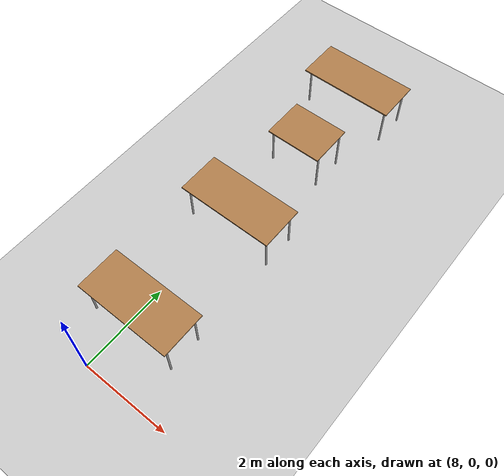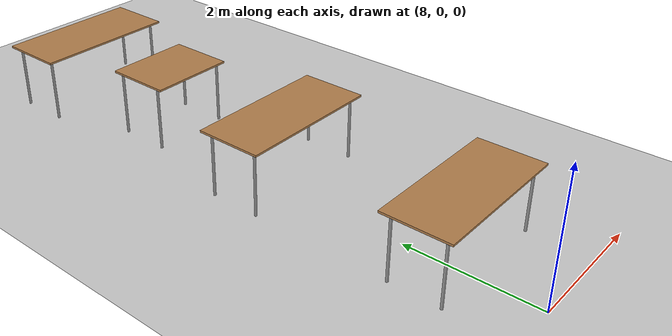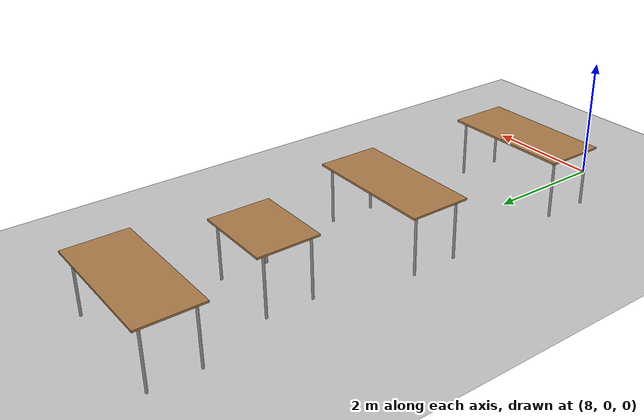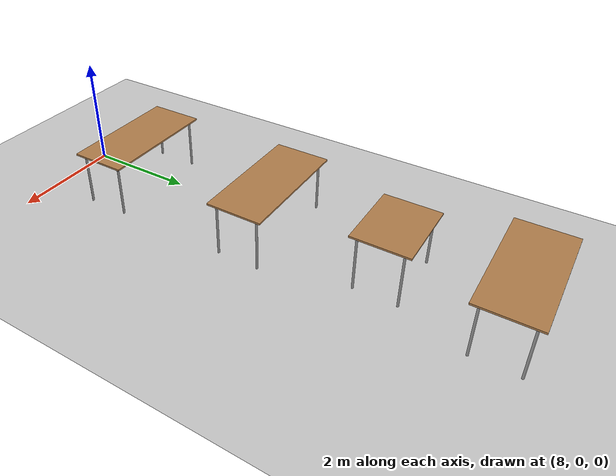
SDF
<sdf version="1.6">
 <world name="default">
  <model name="ground_plane">
   <static>1</static>
   <link name="link">
    <collision name="collision">
     <geometry><plane><normal>0 0 1</normal><size>100 100</size></plane></geometry>
     <surface>
      <contact><collide_bitmask>65535</collide_bitmask></contact>
      <friction><ode><mu>100</mu><mu2>50</mu2></ode></friction>
     </surface>
    </collision>
    <visual name="visual">
     <cast_shadows>0</cast_shadows>
     <geometry><plane><normal>0 0 1</normal><size>100 100</size></plane></geometry>
     <material>
      <script><uri>file://media/materials/scripts/gazebo.material</uri><name>Gazebo/Grey</name></script>
     </material>
    </visual>
   </link>
  </model>
  <model name="mi_og">
   <link name="link_clone_1">
    <pose>-0.024672 7.41051 0 0 -0 0</pose>
    <inertial>
     <mass>1</mass>
     <inertia><ixx>1</ixx><ixy>0</ixy><ixz>0</ixz><iyy>1</iyy><iyz>0</iyz><izz>1</izz></inertia>
    </inertial>
    <visual name="visual1">
     <pose>0 0 1 0 -0 0</pose>
     <geometry><box><size>2.2 1 0.03</size></box></geometry>
     <material>
      <script><uri>file://media/materials/scripts/gazebo.material</uri><name>Gazebo/Wood</name></script>
      <shader type="vertex"><normal_map>__default__</normal_map></shader>
      <ambient>1 1 1 1</ambient>
      <diffuse>1 1 1 1</diffuse>
      <specular>0.2 0.2 0.2 1</specular>
      <emissive>0 0 0 1</emissive>
     </material>
    </visual>
    <visual name="front_left_leg">
     <pose>1 0.38 0.5 0 -0 0</pose>
     <geometry><cylinder><radius>0.02</radius><length>1</length></cylinder></geometry>
     <material>
      <script><uri>file://media/materials/scripts/gazebo.material</uri><name>Gazebo/Grey</name></script>
      <shader type="vertex"><normal_map>__default__</normal_map></shader>
      <ambient>0.3 0.3 0.3 1</ambient>
      <diffuse>0.7 0.7 0.7 1</diffuse>
      <specular>0.01 0.01 0.01 1</specular>
      <emissive>0 0 0 1</emissive>
     </material>
    </visual>
    <visual name="front_right_leg">
     <pose>1 -0.38 0.5 0 -0 0</pose>
     <geometry><cylinder><radius>0.02</radius><length>1</length></cylinder></geometry>
     <material>
      <script><uri>file://media/materials/scripts/gazebo.material</uri><name>Gazebo/Grey</name></script>
      <shader type="vertex"><normal_map>__default__</normal_map></shader>
      <ambient>0.3 0.3 0.3 1</ambient>
      <diffuse>0.7 0.7 0.7 1</diffuse>
      <specular>0.01 0.01 0.01 1</specular>
      <emissive>0 0 0 1</emissive>
     </material>
    </visual>
    <visual name="back_right_leg">
     <pose>-1 -0.38 0.5 0 -0 0</pose>
     <geometry><cylinder><radius>0.02</radius><length>1</length></cylinder></geometry>
     <material>
      <script><uri>file://media/materials/scripts/gazebo.material</uri><name>Gazebo/Grey</name></script>
      <shader type="vertex"><normal_map>__default__</normal_map></shader>
      <ambient>0.3 0.3 0.3 1</ambient>
      <diffuse>0.7 0.7 0.7 1</diffuse>
      <specular>0.01 0.01 0.01 1</specular>
      <emissive>0 0 0 1</emissive>
     </material>
    </visual>
    <visual name="back_left_leg">
     <pose>-1 0.38 0.5 0 -0 0</pose>
     <geometry><cylinder><radius>0.02</radius><length>1</length></cylinder></geometry>
     <material>
      <script><uri>file://media/materials/scripts/gazebo.material</uri><name>Gazebo/Grey</name></script>
      <shader type="vertex"><normal_map>__default__</normal_map></shader>
      <ambient>0.3 0.3 0.3 1</ambient>
      <diffuse>0.7 0.7 0.7 1</diffuse>
      <specular>0.01 0.01 0.01 1</specular>
      <emissive>0 0 0 1</emissive>
     </material>
    </visual>
    <collision name="surface">
     <pose>0 0 1 0 -0 0</pose>
     <geometry><box><size>2.2 1 0.03</size></box></geometry>
     <surface>
      <friction>
       <ode><mu>1</mu><mu2>1</mu2><fdir1>0 0 0</fdir1><slip1>0</slip1><slip2>0</slip2></ode>
       <torsional>
        <coefficient>1</coefficient>
        <patch_radius>0</patch_radius>
        <surface_radius>0</surface_radius>
        <use_patch_radius>1</use_patch_radius>
        <ode><slip>0</slip></ode>
       </torsional>
      </friction>
      <bounce><restitution_coefficient>0</restitution_coefficient><threshold>1e+06</threshold></bounce>
      <contact>
       <collide_without_contact>0</collide_without_contact>
       <collide_without_contact_bitmask>1</collide_without_contact_bitmask>
       <collide_bitmask>1</collide_bitmask>
       <ode>
        <soft_cfm>0</soft_cfm>
        <soft_erp>0.2</soft_erp>
        <kp>1e+13</kp>
        <kd>1</kd>
        <max_vel>0.01</max_vel>
        <min_depth>0</min_depth>
       </ode>
       <bullet>
        <split_impulse>1</split_impulse>
        <split_impulse_penetration_threshold>-0.01</split_impulse_penetration_threshold>
        <soft_cfm>0</soft_cfm>
        <soft_erp>0.2</soft_erp>
        <kp>1e+13</kp>
        <kd>1</kd>
       </bullet>
      </contact>
     </surface>
    </collision>
    <collision name="front_left_leg_0">
     <pose>1 0.38 0.5 0 -0 0</pose>
     <geometry><cylinder><radius>0.02</radius><length>1</length></cylinder></geometry>
     <surface>
      <friction>
       <ode><mu>1</mu><mu2>1</mu2><fdir1>0 0 0</fdir1><slip1>0</slip1><slip2>0</slip2></ode>
       <torsional>
        <coefficient>1</coefficient>
        <patch_radius>0</patch_radius>
        <surface_radius>0</surface_radius>
        <use_patch_radius>1</use_patch_radius>
        <ode><slip>0</slip></ode>
       </torsional>
      </friction>
      <bounce><restitution_coefficient>0</restitution_coefficient><threshold>1e+06</threshold></bounce>
      <contact>
       <collide_without_contact>0</collide_without_contact>
       <collide_without_contact_bitmask>1</collide_without_contact_bitmask>
       <collide_bitmask>1</collide_bitmask>
       <ode>
        <soft_cfm>0</soft_cfm>
        <soft_erp>0.2</soft_erp>
        <kp>1e+13</kp>
        <kd>1</kd>
        <max_vel>0.01</max_vel>
        <min_depth>0</min_depth>
       </ode>
       <bullet>
        <split_impulse>1</split_impulse>
        <split_impulse_penetration_threshold>-0.01</split_impulse_penetration_threshold>
        <soft_cfm>0</soft_cfm>
        <soft_erp>0.2</soft_erp>
        <kp>1e+13</kp>
        <kd>1</kd>
       </bullet>
      </contact>
     </surface>
    </collision>
    <collision name="front_right_leg_0">
     <pose>1 -0.38 0.5 0 -0 0</pose>
     <geometry><cylinder><radius>0.02</radius><length>1</length></cylinder></geometry>
     <surface>
      <friction>
       <ode><mu>1</mu><mu2>1</mu2><fdir1>0 0 0</fdir1><slip1>0</slip1><slip2>0</slip2></ode>
       <torsional>
        <coefficient>1</coefficient>
        <patch_radius>0</patch_radius>
        <surface_radius>0</surface_radius>
        <use_patch_radius>1</use_patch_radius>
        <ode><slip>0</slip></ode>
       </torsional>
      </friction>
      <bounce><restitution_coefficient>0</restitution_coefficient><threshold>1e+06</threshold></bounce>
      <contact>
       <collide_without_contact>0</collide_without_contact>
       <collide_without_contact_bitmask>1</collide_without_contact_bitmask>
       <collide_bitmask>1</collide_bitmask>
       <ode>
        <soft_cfm>0</soft_cfm>
        <soft_erp>0.2</soft_erp>
        <kp>1e+13</kp>
        <kd>1</kd>
        <max_vel>0.01</max_vel>
        <min_depth>0</min_depth>
       </ode>
       <bullet>
        <split_impulse>1</split_impulse>
        <split_impulse_penetration_threshold>-0.01</split_impulse_penetration_threshold>
        <soft_cfm>0</soft_cfm>
        <soft_erp>0.2</soft_erp>
        <kp>1e+13</kp>
        <kd>1</kd>
       </bullet>
      </contact>
     </surface>
    </collision>
    <collision name="back_right_leg_0">
     <pose>-1 -0.38 0.5 0 -0 0</pose>
     <geometry><cylinder><radius>0.02</radius><length>1</length></cylinder></geometry>
     <surface>
      <friction>
       <ode><mu>1</mu><mu2>1</mu2><fdir1>0 0 0</fdir1><slip1>0</slip1><slip2>0</slip2></ode>
       <torsional>
        <coefficient>1</coefficient>
        <patch_radius>0</patch_radius>
        <surface_radius>0</surface_radius>
        <use_patch_radius>1</use_patch_radius>
        <ode><slip>0</slip></ode>
       </torsional>
      </friction>
      <bounce><restitution_coefficient>0</restitution_coefficient><threshold>1e+06</threshold></bounce>
      <contact>
       <collide_without_contact>0</collide_without_contact>
       <collide_without_contact_bitmask>1</collide_without_contact_bitmask>
       <collide_bitmask>1</collide_bitmask>
       <ode>
        <soft_cfm>0</soft_cfm>
        <soft_erp>0.2</soft_erp>
        <kp>1e+13</kp>
        <kd>1</kd>
        <max_vel>0.01</max_vel>
        <min_depth>0</min_depth>
       </ode>
       <bullet>
        <split_impulse>1</split_impulse>
        <split_impulse_penetration_threshold>-0.01</split_impulse_penetration_threshold>
        <soft_cfm>0</soft_cfm>
        <soft_erp>0.2</soft_erp>
        <kp>1e+13</kp>
        <kd>1</kd>
       </bullet>
      </contact>
     </surface>
    </collision>
    <collision name="back_left_leg_0">
     <pose>-1 0.38 0.5 0 -0 0</pose>
     <geometry><cylinder><radius>0.02</radius><length>1</length></cylinder></geometry>
     <surface>
      <friction>
       <ode><mu>1</mu><mu2>1</mu2><fdir1>0 0 0</fdir1><slip1>0</slip1><slip2>0</slip2></ode>
       <torsional>
        <coefficient>1</coefficient>
        <patch_radius>0</patch_radius>
        <surface_radius>0</surface_radius>
        <use_patch_radius>1</use_patch_radius>
        <ode><slip>0</slip></ode>
       </torsional>
      </friction>
      <bounce><restitution_coefficient>0</restitution_coefficient><threshold>1e+06</threshold></bounce>
      <contact>
       <collide_without_contact>0</collide_without_contact>
       <collide_without_contact_bitmask>1</collide_without_contact_bitmask>
       <collide_bitmask>1</collide_bitmask>
       <ode>
        <soft_cfm>0</soft_cfm>
        <soft_erp>0.2</soft_erp>
        <kp>1e+13</kp>
        <kd>1</kd>
        <max_vel>0.01</max_vel>
        <min_depth>0</min_depth>
       </ode>
       <bullet>
        <split_impulse>1</split_impulse>
        <split_impulse_penetration_threshold>-0.01</split_impulse_penetration_threshold>
        <soft_cfm>0</soft_cfm>
        <soft_erp>0.2</soft_erp>
        <kp>1e+13</kp>
        <kd>1</kd>
       </bullet>
      </contact>
     </surface>
    </collision>
   </link>
   <link name="link_clone_2">
    <pose>-0.032705 10.2761 0 0 -0 0</pose>
    <inertial>
     <mass>1</mass>
     <inertia><ixx>1</ixx><ixy>0</ixy><ixz>0</ixz><iyy>1</iyy><iyz>0</iyz><izz>1</izz></inertia>
    </inertial>
    <visual name="visual1">
     <pose>0 0 1 0 -0 0</pose>
     <geometry><box><size>2.2 1 0.03</size></box></geometry>
     <material>
      <script><uri>file://media/materials/scripts/gazebo.material</uri><name>Gazebo/Wood</name></script>
      <shader type="vertex"><normal_map>__default__</normal_map></shader>
      <ambient>1 1 1 1</ambient>
      <diffuse>1 1 1 1</diffuse>
      <specular>0.2 0.2 0.2 1</specular>
      <emissive>0 0 0 1</emissive>
     </material>
    </visual>
    <visual name="front_left_leg">
     <pose>1 0.38 0.5 0 -0 0</pose>
     <geometry><cylinder><radius>0.02</radius><length>1</length></cylinder></geometry>
     <material>
      <script><uri>file://media/materials/scripts/gazebo.material</uri><name>Gazebo/Grey</name></script>
      <shader type="vertex"><normal_map>__default__</normal_map></shader>
      <ambient>0.3 0.3 0.3 1</ambient>
      <diffuse>0.7 0.7 0.7 1</diffuse>
      <specular>0.01 0.01 0.01 1</specular>
      <emissive>0 0 0 1</emissive>
     </material>
    </visual>
    <visual name="front_right_leg">
     <pose>1 -0.38 0.5 0 -0 0</pose>
     <geometry><cylinder><radius>0.02</radius><length>1</length></cylinder></geometry>
     <material>
      <script><uri>file://media/materials/scripts/gazebo.material</uri><name>Gazebo/Grey</name></script>
      <shader type="vertex"><normal_map>__default__</normal_map></shader>
      <ambient>0.3 0.3 0.3 1</ambient>
      <diffuse>0.7 0.7 0.7 1</diffuse>
      <specular>0.01 0.01 0.01 1</specular>
      <emissive>0 0 0 1</emissive>
     </material>
    </visual>
    <visual name="back_right_leg">
     <pose>-1 -0.38 0.5 0 -0 0</pose>
     <geometry><cylinder><radius>0.02</radius><length>1</length></cylinder></geometry>
     <material>
      <script><uri>file://media/materials/scripts/gazebo.material</uri><name>Gazebo/Grey</name></script>
      <shader type="vertex"><normal_map>__default__</normal_map></shader>
      <ambient>0.3 0.3 0.3 1</ambient>
      <diffuse>0.7 0.7 0.7 1</diffuse>
      <specular>0.01 0.01 0.01 1</specular>
      <emissive>0 0 0 1</emissive>
     </material>
    </visual>
    <visual name="back_left_leg">
     <pose>-1 0.38 0.5 0 -0 0</pose>
     <geometry><cylinder><radius>0.02</radius><length>1</length></cylinder></geometry>
     <material>
      <script><uri>file://media/materials/scripts/gazebo.material</uri><name>Gazebo/Grey</name></script>
      <shader type="vertex"><normal_map>__default__</normal_map></shader>
      <ambient>0.3 0.3 0.3 1</ambient>
      <diffuse>0.7 0.7 0.7 1</diffuse>
      <specular>0.01 0.01 0.01 1</specular>
      <emissive>0 0 0 1</emissive>
     </material>
    </visual>
    <collision name="surface">
     <pose>0 0 1 0 -0 0</pose>
     <geometry><box><size>2.2 1 0.03</size></box></geometry>
     <surface>
      <friction>
       <ode><mu>1</mu><mu2>1</mu2><fdir1>0 0 0</fdir1><slip1>0</slip1><slip2>0</slip2></ode>
       <torsional>
        <coefficient>1</coefficient>
        <patch_radius>0</patch_radius>
        <surface_radius>0</surface_radius>
        <use_patch_radius>1</use_patch_radius>
        <ode><slip>0</slip></ode>
       </torsional>
      </friction>
      <bounce><restitution_coefficient>0</restitution_coefficient><threshold>1e+06</threshold></bounce>
      <contact>
       <collide_without_contact>0</collide_without_contact>
       <collide_without_contact_bitmask>1</collide_without_contact_bitmask>
       <collide_bitmask>1</collide_bitmask>
       <ode>
        <soft_cfm>0</soft_cfm>
        <soft_erp>0.2</soft_erp>
        <kp>1e+13</kp>
        <kd>1</kd>
        <max_vel>0.01</max_vel>
        <min_depth>0</min_depth>
       </ode>
       <bullet>
        <split_impulse>1</split_impulse>
        <split_impulse_penetration_threshold>-0.01</split_impulse_penetration_threshold>
        <soft_cfm>0</soft_cfm>
        <soft_erp>0.2</soft_erp>
        <kp>1e+13</kp>
        <kd>1</kd>
       </bullet>
      </contact>
     </surface>
    </collision>
    <collision name="front_left_leg_0">
     <pose>1 0.38 0.5 0 -0 0</pose>
     <geometry><cylinder><radius>0.02</radius><length>1</length></cylinder></geometry>
     <surface>
      <friction>
       <ode><mu>1</mu><mu2>1</mu2><fdir1>0 0 0</fdir1><slip1>0</slip1><slip2>0</slip2></ode>
       <torsional>
        <coefficient>1</coefficient>
        <patch_radius>0</patch_radius>
        <surface_radius>0</surface_radius>
        <use_patch_radius>1</use_patch_radius>
        <ode><slip>0</slip></ode>
       </torsional>
      </friction>
      <bounce><restitution_coefficient>0</restitution_coefficient><threshold>1e+06</threshold></bounce>
      <contact>
       <collide_without_contact>0</collide_without_contact>
       <collide_without_contact_bitmask>1</collide_without_contact_bitmask>
       <collide_bitmask>1</collide_bitmask>
       <ode>
        <soft_cfm>0</soft_cfm>
        <soft_erp>0.2</soft_erp>
        <kp>1e+13</kp>
        <kd>1</kd>
        <max_vel>0.01</max_vel>
        <min_depth>0</min_depth>
       </ode>
       <bullet>
        <split_impulse>1</split_impulse>
        <split_impulse_penetration_threshold>-0.01</split_impulse_penetration_threshold>
        <soft_cfm>0</soft_cfm>
        <soft_erp>0.2</soft_erp>
        <kp>1e+13</kp>
        <kd>1</kd>
       </bullet>
      </contact>
     </surface>
    </collision>
    <collision name="back_right_leg_0">
     <pose>-1 -0.38 0.5 0 -0 0</pose>
     <geometry><cylinder><radius>0.02</radius><length>1</length></cylinder></geometry>
     <surface>
      <friction>
       <ode><mu>1</mu><mu2>1</mu2><fdir1>0 0 0</fdir1><slip1>0</slip1><slip2>0</slip2></ode>
       <torsional>
        <coefficient>1</coefficient>
        <patch_radius>0</patch_radius>
        <surface_radius>0</surface_radius>
        <use_patch_radius>1</use_patch_radius>
        <ode><slip>0</slip></ode>
       </torsional>
      </friction>
      <bounce><restitution_coefficient>0</restitution_coefficient><threshold>1e+06</threshold></bounce>
      <contact>
       <collide_without_contact>0</collide_without_contact>
       <collide_without_contact_bitmask>1</collide_without_contact_bitmask>
       <collide_bitmask>1</collide_bitmask>
       <ode>
        <soft_cfm>0</soft_cfm>
        <soft_erp>0.2</soft_erp>
        <kp>1e+13</kp>
        <kd>1</kd>
        <max_vel>0.01</max_vel>
        <min_depth>0</min_depth>
       </ode>
       <bullet>
        <split_impulse>1</split_impulse>
        <split_impulse_penetration_threshold>-0.01</split_impulse_penetration_threshold>
        <soft_cfm>0</soft_cfm>
        <soft_erp>0.2</soft_erp>
        <kp>1e+13</kp>
        <kd>1</kd>
       </bullet>
      </contact>
     </surface>
    </collision>
    <collision name="front_right_leg_0">
     <pose>1 -0.38 0.5 0 -0 0</pose>
     <geometry><cylinder><radius>0.02</radius><length>1</length></cylinder></geometry>
     <surface>
      <friction>
       <ode><mu>1</mu><mu2>1</mu2><fdir1>0 0 0</fdir1><slip1>0</slip1><slip2>0</slip2></ode>
       <torsional>
        <coefficient>1</coefficient>
        <patch_radius>0</patch_radius>
        <surface_radius>0</surface_radius>
        <use_patch_radius>1</use_patch_radius>
        <ode><slip>0</slip></ode>
       </torsional>
      </friction>
      <bounce><restitution_coefficient>0</restitution_coefficient><threshold>1e+06</threshold></bounce>
      <contact>
       <collide_without_contact>0</collide_without_contact>
       <collide_without_contact_bitmask>1</collide_without_contact_bitmask>
       <collide_bitmask>1</collide_bitmask>
       <ode>
        <soft_cfm>0</soft_cfm>
        <soft_erp>0.2</soft_erp>
        <kp>1e+13</kp>
        <kd>1</kd>
        <max_vel>0.01</max_vel>
        <min_depth>0</min_depth>
       </ode>
       <bullet>
        <split_impulse>1</split_impulse>
        <split_impulse_penetration_threshold>-0.01</split_impulse_penetration_threshold>
        <soft_cfm>0</soft_cfm>
        <soft_erp>0.2</soft_erp>
        <kp>1e+13</kp>
        <kd>1</kd>
       </bullet>
      </contact>
     </surface>
    </collision>
    <collision name="back_left_leg_0">
     <pose>-1 0.38 0.5 0 -0 0</pose>
     <geometry><cylinder><radius>0.02</radius><length>1</length></cylinder></geometry>
     <surface>
      <friction>
       <ode><mu>1</mu><mu2>1</mu2><fdir1>0 0 0</fdir1><slip1>0</slip1><slip2>0</slip2></ode>
       <torsional>
        <coefficient>1</coefficient>
        <patch_radius>0</patch_radius>
        <surface_radius>0</surface_radius>
        <use_patch_radius>1</use_patch_radius>
        <ode><slip>0</slip></ode>
       </torsional>
      </friction>
      <bounce><restitution_coefficient>0</restitution_coefficient><threshold>1e+06</threshold></bounce>
      <contact>
       <collide_without_contact>0</collide_without_contact>
       <collide_without_contact_bitmask>1</collide_without_contact_bitmask>
       <collide_bitmask>1</collide_bitmask>
       <ode>
        <soft_cfm>0</soft_cfm>
        <soft_erp>0.2</soft_erp>
        <kp>1e+13</kp>
        <kd>1</kd>
        <max_vel>0.01</max_vel>
        <min_depth>0</min_depth>
       </ode>
       <bullet>
        <split_impulse>1</split_impulse>
        <split_impulse_penetration_threshold>-0.01</split_impulse_penetration_threshold>
        <soft_cfm>0</soft_cfm>
        <soft_erp>0.2</soft_erp>
        <kp>1e+13</kp>
        <kd>1</kd>
       </bullet>
      </contact>
     </surface>
    </collision>
   </link>
   <link name="link_clone_2_clone">
    <pose>-0.036589 12.5473 0 0 -0 0</pose>
    <inertial>
     <mass>1</mass>
     <inertia><ixx>1</ixx><ixy>0</ixy><ixz>0</ixz><iyy>1</iyy><iyz>0</iyz><izz>1</izz></inertia>
    </inertial>
    <visual name="visual1">
     <pose>0 0 1 0 -0 0</pose>
     <geometry><box><size>1.3 1 0.03</size></box></geometry>
     <material>
      <script><uri>file://media/materials/scripts/gazebo.material</uri><name>Gazebo/Wood</name></script>
      <shader type="vertex"><normal_map>__default__</normal_map></shader>
      <ambient>1 1 1 1</ambient>
      <diffuse>1 1 1 1</diffuse>
      <specular>0.2 0.2 0.2 1</specular>
      <emissive>0 0 0 1</emissive>
     </material>
    </visual>
    <visual name="front_right_leg">
     <pose>0.6 -0.38 0.5 0 -0 0</pose>
     <geometry><cylinder><radius>0.02</radius><length>1</length></cylinder></geometry>
     <material>
      <script><uri>file://media/materials/scripts/gazebo.material</uri><name>Gazebo/Grey</name></script>
      <shader type="vertex"><normal_map>__default__</normal_map></shader>
      <ambient>0.3 0.3 0.3 1</ambient>
      <diffuse>0.7 0.7 0.7 1</diffuse>
      <specular>0.01 0.01 0.01 1</specular>
      <emissive>0 0 0 1</emissive>
     </material>
    </visual>
    <visual name="front_left_leg">
     <pose>0.6 0.38 0.5 0 -0 0</pose>
     <geometry><cylinder><radius>0.02</radius><length>1</length></cylinder></geometry>
     <material>
      <script><uri>file://media/materials/scripts/gazebo.material</uri><name>Gazebo/Grey</name></script>
      <shader type="vertex"><normal_map>__default__</normal_map></shader>
      <ambient>0.3 0.3 0.3 1</ambient>
      <diffuse>0.7 0.7 0.7 1</diffuse>
      <specular>0.01 0.01 0.01 1</specular>
      <emissive>0 0 0 1</emissive>
     </material>
    </visual>
    <visual name="back_right_leg">
     <pose>-0.6 -0.38 0.5 0 -0 0</pose>
     <geometry><cylinder><radius>0.02</radius><length>1</length></cylinder></geometry>
     <material>
      <script><uri>file://media/materials/scripts/gazebo.material</uri><name>Gazebo/Grey</name></script>
      <shader type="vertex"><normal_map>__default__</normal_map></shader>
      <ambient>0.3 0.3 0.3 1</ambient>
      <diffuse>0.7 0.7 0.7 1</diffuse>
      <specular>0.01 0.01 0.01 1</specular>
      <emissive>0 0 0 1</emissive>
     </material>
    </visual>
    <visual name="back_left_leg">
     <pose>-0.6 0.38 0.5 0 -0 0</pose>
     <geometry><cylinder><radius>0.02</radius><length>1</length></cylinder></geometry>
     <material>
      <script><uri>file://media/materials/scripts/gazebo.material</uri><name>Gazebo/Grey</name></script>
      <shader type="vertex"><normal_map>__default__</normal_map></shader>
      <ambient>0.3 0.3 0.3 1</ambient>
      <diffuse>0.7 0.7 0.7 1</diffuse>
      <specular>0.01 0.01 0.01 1</specular>
      <emissive>0 0 0 1</emissive>
     </material>
    </visual>
    <collision name="surface">
     <pose>0 0 1 0 -0 0</pose>
     <geometry><box><size>1.4 1 0.03</size></box></geometry>
     <surface>
      <friction>
       <ode><mu>1</mu><mu2>1</mu2><fdir1>0 0 0</fdir1><slip1>0</slip1><slip2>0</slip2></ode>
       <torsional>
        <coefficient>1</coefficient>
        <patch_radius>0</patch_radius>
        <surface_radius>0</surface_radius>
        <use_patch_radius>1</use_patch_radius>
        <ode><slip>0</slip></ode>
       </torsional>
      </friction>
      <bounce><restitution_coefficient>0</restitution_coefficient><threshold>1e+06</threshold></bounce>
      <contact>
       <collide_without_contact>0</collide_without_contact>
       <collide_without_contact_bitmask>1</collide_without_contact_bitmask>
       <collide_bitmask>1</collide_bitmask>
       <ode>
        <soft_cfm>0</soft_cfm>
        <soft_erp>0.2</soft_erp>
        <kp>1e+13</kp>
        <kd>1</kd>
        <max_vel>0.01</max_vel>
        <min_depth>0</min_depth>
       </ode>
       <bullet>
        <split_impulse>1</split_impulse>
        <split_impulse_penetration_threshold>-0.01</split_impulse_penetration_threshold>
        <soft_cfm>0</soft_cfm>
        <soft_erp>0.2</soft_erp>
        <kp>1e+13</kp>
        <kd>1</kd>
       </bullet>
      </contact>
     </surface>
    </collision>
    <collision name="front_left_leg_0">
     <pose>0.6 0.38 0.5 0 -0 0</pose>
     <geometry><cylinder><radius>0.02</radius><length>1</length></cylinder></geometry>
     <surface>
      <friction>
       <ode><mu>1</mu><mu2>1</mu2><fdir1>0 0 0</fdir1><slip1>0</slip1><slip2>0</slip2></ode>
       <torsional>
        <coefficient>1</coefficient>
        <patch_radius>0</patch_radius>
        <surface_radius>0</surface_radius>
        <use_patch_radius>1</use_patch_radius>
        <ode><slip>0</slip></ode>
       </torsional>
      </friction>
      <bounce><restitution_coefficient>0</restitution_coefficient><threshold>1e+06</threshold></bounce>
      <contact>
       <collide_without_contact>0</collide_without_contact>
       <collide_without_contact_bitmask>1</collide_without_contact_bitmask>
       <collide_bitmask>1</collide_bitmask>
       <ode>
        <soft_cfm>0</soft_cfm>
        <soft_erp>0.2</soft_erp>
        <kp>1e+13</kp>
        <kd>1</kd>
        <max_vel>0.01</max_vel>
        <min_depth>0</min_depth>
       </ode>
       <bullet>
        <split_impulse>1</split_impulse>
        <split_impulse_penetration_threshold>-0.01</split_impulse_penetration_threshold>
        <soft_cfm>0</soft_cfm>
        <soft_erp>0.2</soft_erp>
        <kp>1e+13</kp>
        <kd>1</kd>
       </bullet>
      </contact>
     </surface>
    </collision>
    <collision name="back_right_leg_0">
     <pose>-0.6 -0.38 0.5 0 -0 0</pose>
     <geometry><cylinder><radius>0.02</radius><length>1</length></cylinder></geometry>
     <surface>
      <friction>
       <ode><mu>1</mu><mu2>1</mu2><fdir1>0 0 0</fdir1><slip1>0</slip1><slip2>0</slip2></ode>
       <torsional>
        <coefficient>1</coefficient>
        <patch_radius>0</patch_radius>
        <surface_radius>0</surface_radius>
        <use_patch_radius>1</use_patch_radius>
        <ode><slip>0</slip></ode>
       </torsional>
      </friction>
      <bounce><restitution_coefficient>0</restitution_coefficient><threshold>1e+06</threshold></bounce>
      <contact>
       <collide_without_contact>0</collide_without_contact>
       <collide_without_contact_bitmask>1</collide_without_contact_bitmask>
       <collide_bitmask>1</collide_bitmask>
       <ode>
        <soft_cfm>0</soft_cfm>
        <soft_erp>0.2</soft_erp>
        <kp>1e+13</kp>
        <kd>1</kd>
        <max_vel>0.01</max_vel>
        <min_depth>0</min_depth>
       </ode>
       <bullet>
        <split_impulse>1</split_impulse>
        <split_impulse_penetration_threshold>-0.01</split_impulse_penetration_threshold>
        <soft_cfm>0</soft_cfm>
        <soft_erp>0.2</soft_erp>
        <kp>1e+13</kp>
        <kd>1</kd>
       </bullet>
      </contact>
     </surface>
    </collision>
    <collision name="front_right_leg_0">
     <pose>0.6 -0.38 0.5 0 -0 0</pose>
     <geometry><cylinder><radius>0.02</radius><length>1</length></cylinder></geometry>
     <surface>
      <friction>
       <ode><mu>1</mu><mu2>1</mu2><fdir1>0 0 0</fdir1><slip1>0</slip1><slip2>0</slip2></ode>
       <torsional>
        <coefficient>1</coefficient>
        <patch_radius>0</patch_radius>
        <surface_radius>0</surface_radius>
        <use_patch_radius>1</use_patch_radius>
        <ode><slip>0</slip></ode>
       </torsional>
      </friction>
      <bounce><restitution_coefficient>0</restitution_coefficient><threshold>1e+06</threshold></bounce>
      <contact>
       <collide_without_contact>0</collide_without_contact>
       <collide_without_contact_bitmask>1</collide_without_contact_bitmask>
       <collide_bitmask>1</collide_bitmask>
       <ode>
        <soft_cfm>0</soft_cfm>
        <soft_erp>0.2</soft_erp>
        <kp>1e+13</kp>
        <kd>1</kd>
        <max_vel>0.01</max_vel>
        <min_depth>0</min_depth>
       </ode>
       <bullet>
        <split_impulse>1</split_impulse>
        <split_impulse_penetration_threshold>-0.01</split_impulse_penetration_threshold>
        <soft_cfm>0</soft_cfm>
        <soft_erp>0.2</soft_erp>
        <kp>1e+13</kp>
        <kd>1</kd>
       </bullet>
      </contact>
     </surface>
    </collision>
    <collision name="back_left_leg_0">
     <pose>-0.6 0.38 0.5 0 -0 0</pose>
     <geometry><cylinder><radius>0.02</radius><length>1</length></cylinder></geometry>
     <surface>
      <friction>
       <ode><mu>1</mu><mu2>1</mu2><fdir1>0 0 0</fdir1><slip1>0</slip1><slip2>0</slip2></ode>
       <torsional>
        <coefficient>1</coefficient>
        <patch_radius>0</patch_radius>
        <surface_radius>0</surface_radius>
        <use_patch_radius>1</use_patch_radius>
        <ode><slip>0</slip></ode>
       </torsional>
      </friction>
      <bounce><restitution_coefficient>0</restitution_coefficient><threshold>1e+06</threshold></bounce>
      <contact>
       <collide_without_contact>0</collide_without_contact>
       <collide_without_contact_bitmask>1</collide_without_contact_bitmask>
       <collide_bitmask>1</collide_bitmask>
       <ode>
        <soft_cfm>0</soft_cfm>
        <soft_erp>0.2</soft_erp>
        <kp>1e+13</kp>
        <kd>1</kd>
        <max_vel>0.01</max_vel>
        <min_depth>0</min_depth>
       </ode>
       <bullet>
        <split_impulse>1</split_impulse>
        <split_impulse_penetration_threshold>-0.01</split_impulse_penetration_threshold>
        <soft_cfm>0</soft_cfm>
        <soft_erp>0.2</soft_erp>
        <kp>1e+13</kp>
        <kd>1</kd>
       </bullet>
      </contact>
     </surface>
    </collision>
   </link>
   <link name="link_clone_3">
    <pose>-0.057419 14.4989 0 0 -0 0</pose>
    <inertial>
     <mass>1</mass>
     <inertia><ixx>1</ixx><ixy>0</ixy><ixz>0</ixz><iyy>1</iyy><iyz>0</iyz><izz>1</izz></inertia>
    </inertial>
    <visual name="visual1">
     <pose>0 0 1 0 -0 0</pose>
     <geometry><box><size>2.2 1 0.03</size></box></geometry>
     <material>
      <script><uri>file://media/materials/scripts/gazebo.material</uri><name>Gazebo/Wood</name></script>
      <shader type="vertex"><normal_map>__default__</normal_map></shader>
      <ambient>1 1 1 1</ambient>
      <diffuse>1 1 1 1</diffuse>
      <specular>0.2 0.2 0.2 1</specular>
      <emissive>0 0 0 1</emissive>
     </material>
    </visual>
    <visual name="front_left_leg">
     <pose>1 0.38 0.5 0 -0 0</pose>
     <geometry><cylinder><radius>0.02</radius><length>1</length></cylinder></geometry>
     <material>
      <script><uri>file://media/materials/scripts/gazebo.material</uri><name>Gazebo/Grey</name></script>
      <shader type="vertex"><normal_map>__default__</normal_map></shader>
      <ambient>0.3 0.3 0.3 1</ambient>
      <diffuse>0.7 0.7 0.7 1</diffuse>
      <specular>0.01 0.01 0.01 1</specular>
      <emissive>0 0 0 1</emissive>
     </material>
    </visual>
    <visual name="front_right_leg">
     <pose>1 -0.38 0.5 0 -0 0</pose>
     <geometry><cylinder><radius>0.02</radius><length>1</length></cylinder></geometry>
     <material>
      <script><uri>file://media/materials/scripts/gazebo.material</uri><name>Gazebo/Grey</name></script>
      <shader type="vertex"><normal_map>__default__</normal_map></shader>
      <ambient>0.3 0.3 0.3 1</ambient>
      <diffuse>0.7 0.7 0.7 1</diffuse>
      <specular>0.01 0.01 0.01 1</specular>
      <emissive>0 0 0 1</emissive>
     </material>
    </visual>
    <visual name="back_right_leg">
     <pose>-1 -0.38 0.5 0 -0 0</pose>
     <geometry><cylinder><radius>0.02</radius><length>1</length></cylinder></geometry>
     <material>
      <script><uri>file://media/materials/scripts/gazebo.material</uri><name>Gazebo/Grey</name></script>
      <shader type="vertex"><normal_map>__default__</normal_map></shader>
      <ambient>0.3 0.3 0.3 1</ambient>
      <diffuse>0.7 0.7 0.7 1</diffuse>
      <specular>0.01 0.01 0.01 1</specular>
      <emissive>0 0 0 1</emissive>
     </material>
    </visual>
    <visual name="back_left_leg">
     <pose>-1 0.38 0.5 0 -0 0</pose>
     <geometry><cylinder><radius>0.02</radius><length>1</length></cylinder></geometry>
     <material>
      <script><uri>file://media/materials/scripts/gazebo.material</uri><name>Gazebo/Grey</name></script>
      <shader type="vertex"><normal_map>__default__</normal_map></shader>
      <ambient>0.3 0.3 0.3 1</ambient>
      <diffuse>0.7 0.7 0.7 1</diffuse>
      <specular>0.01 0.01 0.01 1</specular>
      <emissive>0 0 0 1</emissive>
     </material>
    </visual>
    <collision name="surface">
     <pose>0 0 1 0 -0 0</pose>
     <geometry><box><size>2.2 1 0.03</size></box></geometry>
     <surface>
      <friction>
       <ode><mu>1</mu><mu2>1</mu2><fdir1>0 0 0</fdir1><slip1>0</slip1><slip2>0</slip2></ode>
       <torsional>
        <coefficient>1</coefficient>
        <patch_radius>0</patch_radius>
        <surface_radius>0</surface_radius>
        <use_patch_radius>1</use_patch_radius>
        <ode><slip>0</slip></ode>
       </torsional>
      </friction>
      <bounce><restitution_coefficient>0</restitution_coefficient><threshold>1e+06</threshold></bounce>
      <contact>
       <collide_without_contact>0</collide_without_contact>
       <collide_without_contact_bitmask>1</collide_without_contact_bitmask>
       <collide_bitmask>1</collide_bitmask>
       <ode>
        <soft_cfm>0</soft_cfm>
        <soft_erp>0.2</soft_erp>
        <kp>1e+13</kp>
        <kd>1</kd>
        <max_vel>0.01</max_vel>
        <min_depth>0</min_depth>
       </ode>
       <bullet>
        <split_impulse>1</split_impulse>
        <split_impulse_penetration_threshold>-0.01</split_impulse_penetration_threshold>
        <soft_cfm>0</soft_cfm>
        <soft_erp>0.2</soft_erp>
        <kp>1e+13</kp>
        <kd>1</kd>
       </bullet>
      </contact>
     </surface>
    </collision>
    <collision name="front_left_leg_0">
     <pose>1 0.38 0.5 0 -0 0</pose>
     <geometry><cylinder><radius>0.02</radius><length>1</length></cylinder></geometry>
     <surface>
      <friction>
       <ode><mu>1</mu><mu2>1</mu2><fdir1>0 0 0</fdir1><slip1>0</slip1><slip2>0</slip2></ode>
       <torsional>
        <coefficient>1</coefficient>
        <patch_radius>0</patch_radius>
        <surface_radius>0</surface_radius>
        <use_patch_radius>1</use_patch_radius>
        <ode><slip>0</slip></ode>
       </torsional>
      </friction>
      <bounce><restitution_coefficient>0</restitution_coefficient><threshold>1e+06</threshold></bounce>
      <contact>
       <collide_without_contact>0</collide_without_contact>
       <collide_without_contact_bitmask>1</collide_without_contact_bitmask>
       <collide_bitmask>1</collide_bitmask>
       <ode>
        <soft_cfm>0</soft_cfm>
        <soft_erp>0.2</soft_erp>
        <kp>1e+13</kp>
        <kd>1</kd>
        <max_vel>0.01</max_vel>
        <min_depth>0</min_depth>
       </ode>
       <bullet>
        <split_impulse>1</split_impulse>
        <split_impulse_penetration_threshold>-0.01</split_impulse_penetration_threshold>
        <soft_cfm>0</soft_cfm>
        <soft_erp>0.2</soft_erp>
        <kp>1e+13</kp>
        <kd>1</kd>
       </bullet>
      </contact>
     </surface>
    </collision>
    <collision name="front_right_leg_0">
     <pose>1 -0.38 0.5 0 -0 0</pose>
     <geometry><cylinder><radius>0.02</radius><length>1</length></cylinder></geometry>
     <surface>
      <friction>
       <ode><mu>1</mu><mu2>1</mu2><fdir1>0 0 0</fdir1><slip1>0</slip1><slip2>0</slip2></ode>
       <torsional>
        <coefficient>1</coefficient>
        <patch_radius>0</patch_radius>
        <surface_radius>0</surface_radius>
        <use_patch_radius>1</use_patch_radius>
        <ode><slip>0</slip></ode>
       </torsional>
      </friction>
      <bounce><restitution_coefficient>0</restitution_coefficient><threshold>1e+06</threshold></bounce>
      <contact>
       <collide_without_contact>0</collide_without_contact>
       <collide_without_contact_bitmask>1</collide_without_contact_bitmask>
       <collide_bitmask>1</collide_bitmask>
       <ode>
        <soft_cfm>0</soft_cfm>
        <soft_erp>0.2</soft_erp>
        <kp>1e+13</kp>
        <kd>1</kd>
        <max_vel>0.01</max_vel>
        <min_depth>0</min_depth>
       </ode>
       <bullet>
        <split_impulse>1</split_impulse>
        <split_impulse_penetration_threshold>-0.01</split_impulse_penetration_threshold>
        <soft_cfm>0</soft_cfm>
        <soft_erp>0.2</soft_erp>
        <kp>1e+13</kp>
        <kd>1</kd>
       </bullet>
      </contact>
     </surface>
    </collision>
    <collision name="back_right_leg_0">
     <pose>-1 -0.38 0.5 0 -0 0</pose>
     <geometry><cylinder><radius>0.02</radius><length>1</length></cylinder></geometry>
     <surface>
      <friction>
       <ode><mu>1</mu><mu2>1</mu2><fdir1>0 0 0</fdir1><slip1>0</slip1><slip2>0</slip2></ode>
       <torsional>
        <coefficient>1</coefficient>
        <patch_radius>0</patch_radius>
        <surface_radius>0</surface_radius>
        <use_patch_radius>1</use_patch_radius>
        <ode><slip>0</slip></ode>
       </torsional>
      </friction>
      <bounce><restitution_coefficient>0</restitution_coefficient><threshold>1e+06</threshold></bounce>
      <contact>
       <collide_without_contact>0</collide_without_contact>
       <collide_without_contact_bitmask>1</collide_without_contact_bitmask>
       <collide_bitmask>1</collide_bitmask>
       <ode>
        <soft_cfm>0</soft_cfm>
        <soft_erp>0.2</soft_erp>
        <kp>1e+13</kp>
        <kd>1</kd>
        <max_vel>0.01</max_vel>
        <min_depth>0</min_depth>
       </ode>
       <bullet>
        <split_impulse>1</split_impulse>
        <split_impulse_penetration_threshold>-0.01</split_impulse_penetration_threshold>
        <soft_cfm>0</soft_cfm>
        <soft_erp>0.2</soft_erp>
        <kp>1e+13</kp>
        <kd>1</kd>
       </bullet>
      </contact>
     </surface>
    </collision>
    <collision name="back_left_leg_0">
     <pose>-1 0.38 0.5 0 -0 0</pose>
     <geometry><cylinder><radius>0.02</radius><length>1</length></cylinder></geometry>
     <surface>
      <friction>
       <ode><mu>1</mu><mu2>1</mu2><fdir1>0 0 0</fdir1><slip1>0</slip1><slip2>0</slip2></ode>
       <torsional>
        <coefficient>1</coefficient>
        <patch_radius>0</patch_radius>
        <surface_radius>0</surface_radius>
        <use_patch_radius>1</use_patch_radius>
        <ode><slip>0</slip></ode>
       </torsional>
      </friction>
      <bounce><restitution_coefficient>0</restitution_coefficient><threshold>1e+06</threshold></bounce>
      <contact>
       <collide_without_contact>0</collide_without_contact>
       <collide_without_contact_bitmask>1</collide_without_contact_bitmask>
       <collide_bitmask>1</collide_bitmask>
       <ode>
        <soft_cfm>0</soft_cfm>
        <soft_erp>0.2</soft_erp>
        <kp>1e+13</kp>
        <kd>1</kd>
        <max_vel>0.01</max_vel>
        <min_depth>0</min_depth>
       </ode>
       <bullet>
        <split_impulse>1</split_impulse>
        <split_impulse_penetration_threshold>-0.01</split_impulse_penetration_threshold>
        <soft_cfm>0</soft_cfm>
        <soft_erp>0.2</soft_erp>
        <kp>1e+13</kp>
        <kd>1</kd>
       </bullet>
      </contact>
     </surface>
    </collision>
   </link>
   <static>1</static>
   <pose>8.29575 -6.07547 0 0 -0 0</pose>
  </model>
 </world>
</sdf>
